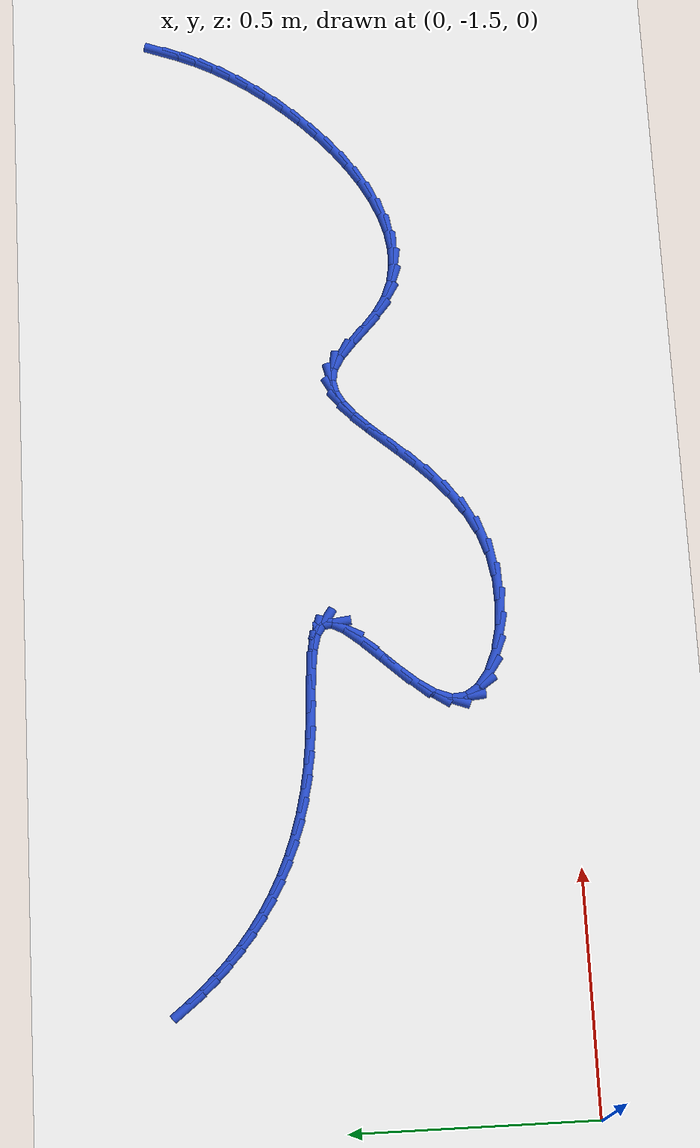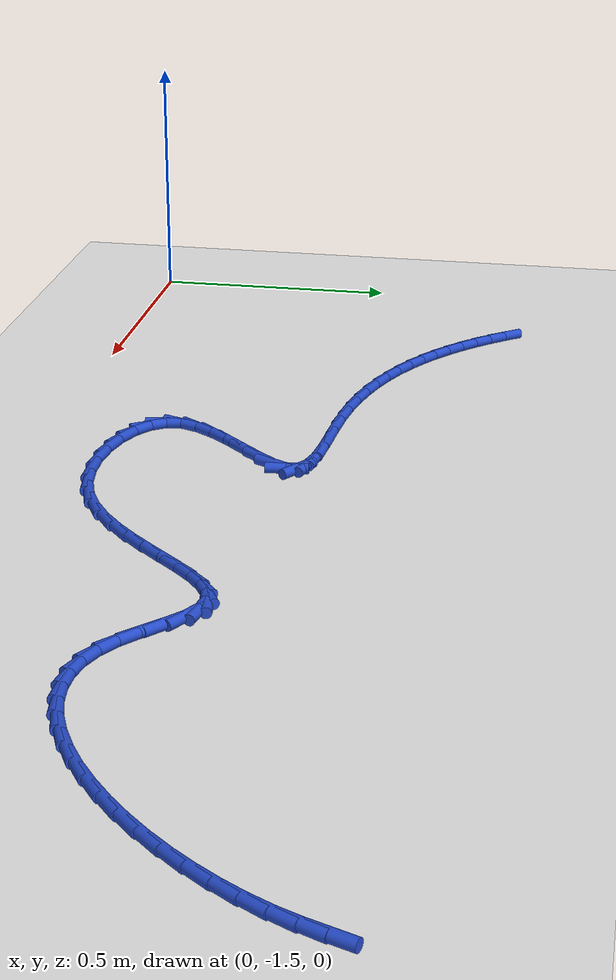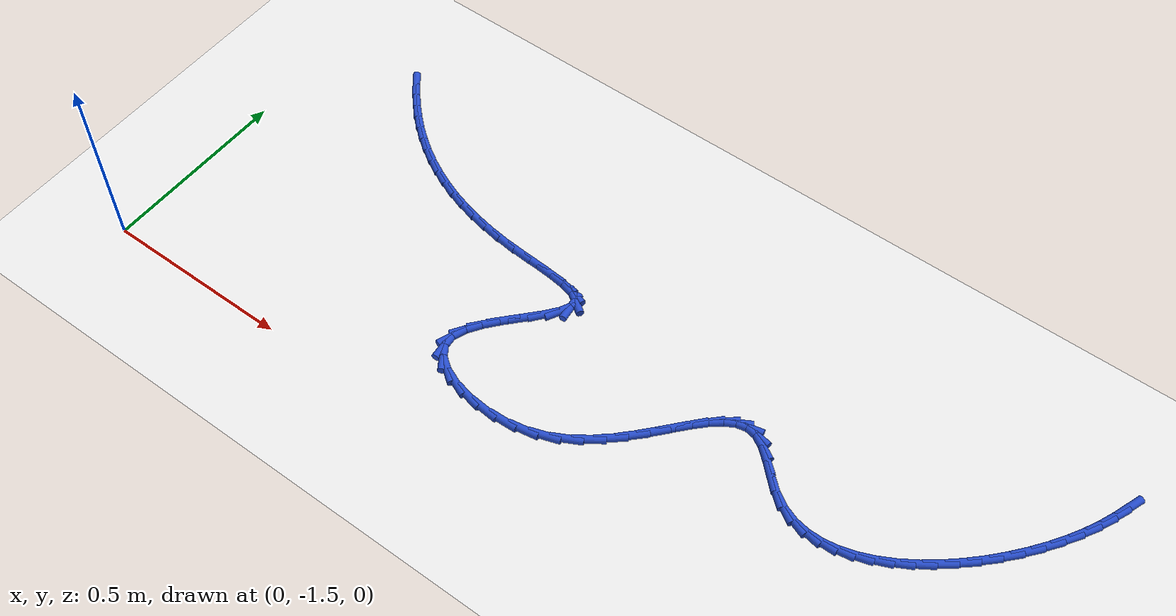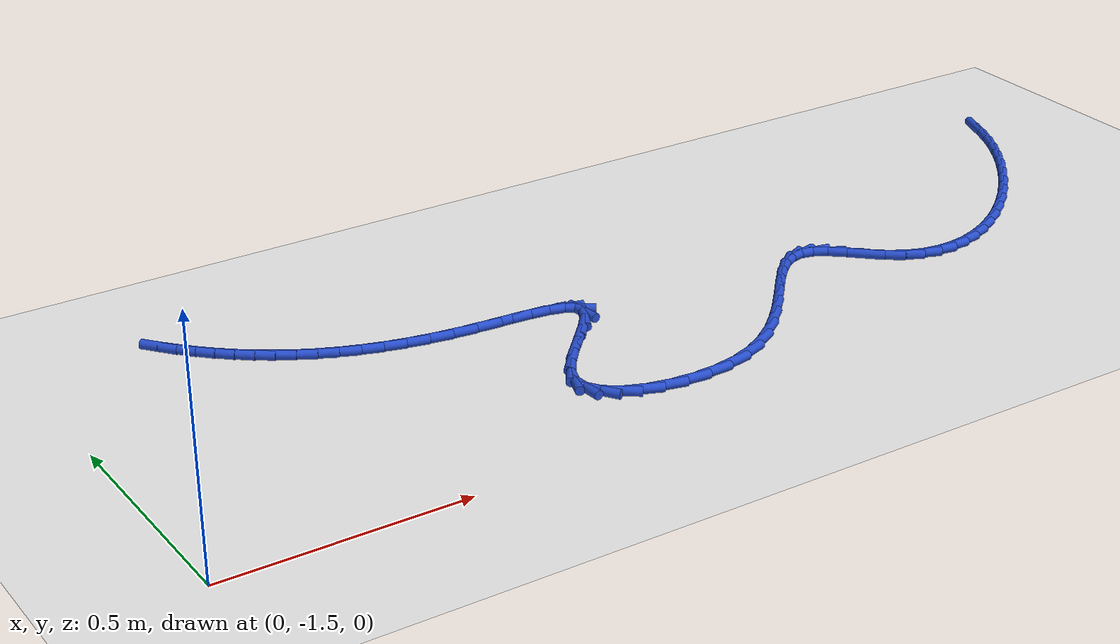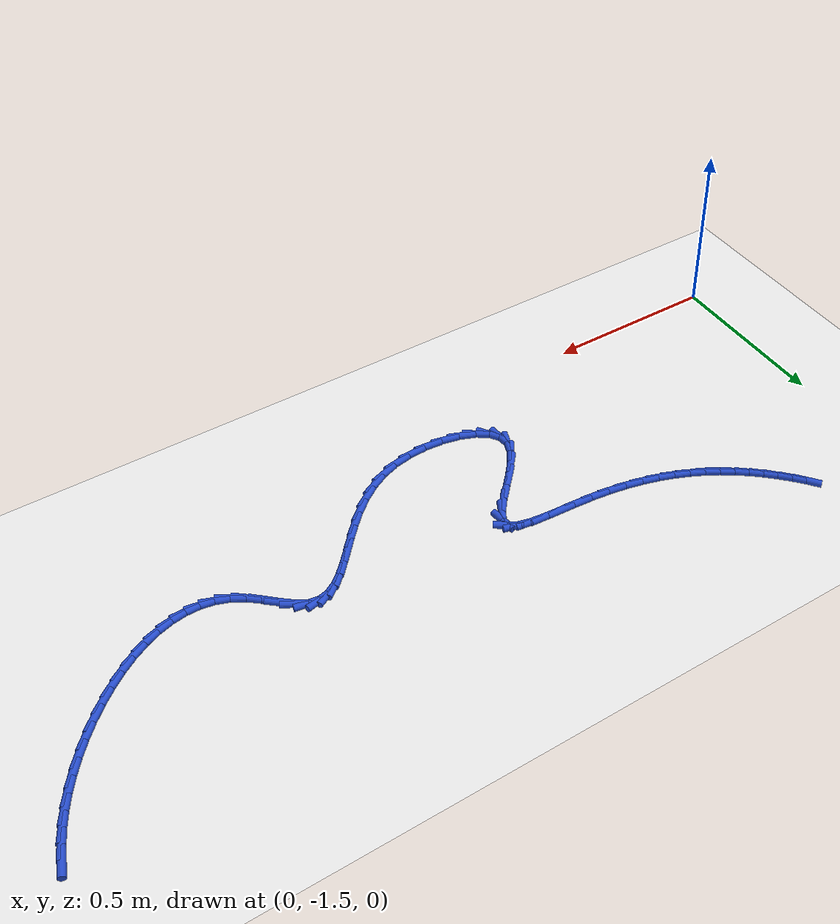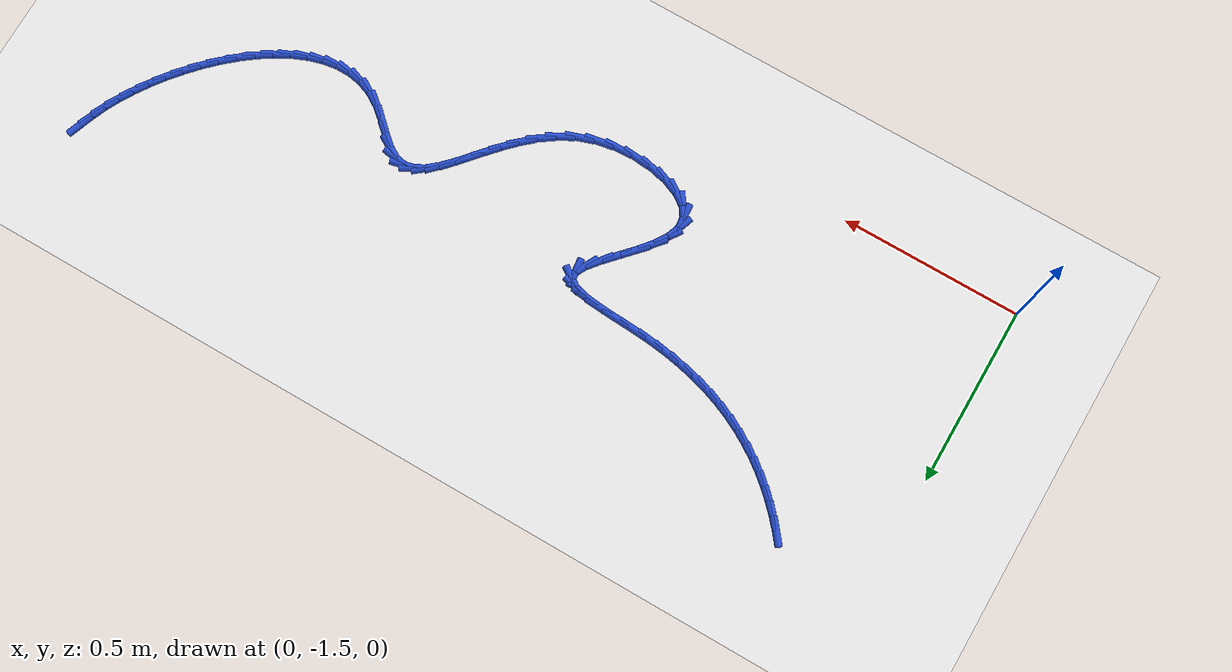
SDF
<sdf version="1.6">
 <world name="default">
  <model name="ground_plane">
   <static>1</static>
   <link name="link">
    <collision name="collision">
     <geometry><plane><normal>0 0 1</normal><size>100 100</size></plane></geometry>
     <surface><friction><ode><mu>100</mu><mu2>50</mu2></ode></friction></surface>
    </collision>
    <visual name="visual">
     <cast_shadows>0</cast_shadows>
     <geometry><plane><normal>0 0 1</normal><size>100 100</size></plane></geometry>
     <material>
      <script><uri>file://media/materials/scripts/gazebo.material</uri><name>Gazebo/WhiteGlow</name></script>
     </material>
    </visual>
   </link>
  </model>
  <model name="line">
   <link name="link_128">
    <pose>2.3588797464618136 -0.7130831240338528 0.01 0 1.57 1.2246334717804939</pose>
    <collision name="collision">
     <geometry><cylinder><radius>0.01</radius><length>0.08</length></cylinder></geometry>
    </collision>
    <visual name="visual">
     <material>
      <script><name>Gazebo/Blue</name><uri>file://media/materials/scripts/gazebo.material</uri></script>
     </material>
     <geometry><cylinder><radius>0.01</radius><length>0.08</length></cylinder></geometry>
    </visual>
   </link>
   <link name="link_129">
    <pose>2.345464387027587 -0.7502771229693032 0.01 0 1.57 1.1703237414654428</pose>
    <collision name="collision">
     <geometry><cylinder><radius>0.01</radius><length>0.08</length></cylinder></geometry>
    </collision>
    <visual name="visual">
     <material>
      <script><name>Gazebo/Blue</name><uri>file://media/materials/scripts/gazebo.material</uri></script>
     </material>
     <geometry><cylinder><radius>0.01</radius><length>0.08</length></cylinder></geometry>
    </visual>
   </link>
   <link name="link_130">
    <pose>2.3296010954592896 -0.7877479553292828 0.01 0 1.57 1.1039477855992201</pose>
    <collision name="collision">
     <geometry><cylinder><radius>0.01</radius><length>0.08</length></cylinder></geometry>
    </collision>
    <visual name="visual">
     <material>
      <script><name>Gazebo/Blue</name><uri>file://media/materials/scripts/gazebo.material</uri></script>
     </material>
     <geometry><cylinder><radius>0.01</radius><length>0.08</length></cylinder></geometry>
    </visual>
   </link>
   <link name="link_131">
    <pose>2.3102534347724304 -0.8261355926537783 0.01 0 1.57 1.0422277539545297</pose>
    <collision name="collision">
     <geometry><cylinder><radius>0.01</radius><length>0.08</length></cylinder></geometry>
    </collision>
    <visual name="visual">
     <material>
      <script><name>Gazebo/Blue</name><uri>file://media/materials/scripts/gazebo.material</uri></script>
     </material>
     <geometry><cylinder><radius>0.01</radius><length>0.08</length></cylinder></geometry>
    </visual>
   </link>
   <link name="link_132">
    <pose>2.2874665083433743 -0.8651545836900321 0.01 0 1.57 0.985975855565394</pose>
    <collision name="collision">
     <geometry><cylinder><radius>0.01</radius><length>0.08</length></cylinder></geometry>
    </collision>
    <visual name="visual">
     <material>
      <script><name>Gazebo/Blue</name><uri>file://media/materials/scripts/gazebo.material</uri></script>
     </material>
     <geometry><cylinder><radius>0.01</radius><length>0.08</length></cylinder></geometry>
    </visual>
   </link>
   <link name="link_133">
    <pose>2.2615585088469774 -0.9042858076243321 0.01 0 1.57 0.9328110256673688</pose>
    <collision name="collision">
     <geometry><cylinder><radius>0.01</radius><length>0.08</length></cylinder></geometry>
    </collision>
    <visual name="visual">
     <material>
      <script><name>Gazebo/Blue</name><uri>file://media/materials/scripts/gazebo.material</uri></script>
     </material>
     <geometry><cylinder><radius>0.01</radius><length>0.08</length></cylinder></geometry>
    </visual>
   </link>
   <link name="link_134">
    <pose>2.2328476289679675 -0.9430101436345186 0.01 0 1.57 0.8808082338046381</pose>
    <collision name="collision">
     <geometry><cylinder><radius>0.01</radius><length>0.08</length></cylinder></geometry>
    </collision>
    <visual name="visual">
     <material>
      <script><name>Gazebo/Blue</name><uri>file://media/materials/scripts/gazebo.material</uri></script>
     </material>
     <geometry><cylinder><radius>0.01</radius><length>0.08</length></cylinder></geometry>
    </visual>
   </link>
   <link name="link_135">
    <pose>2.2016520613910693 -0.980808470898434 0.01 0 1.57 0.8282768920435906</pose>
    <collision name="collision">
     <geometry><cylinder><radius>0.01</radius><length>0.08</length></cylinder></geometry>
    </collision>
    <visual name="visual">
     <material>
      <script><name>Gazebo/Blue</name><uri>file://media/materials/scripts/gazebo.material</uri></script>
     </material>
     <geometry><cylinder><radius>0.01</radius><length>0.08</length></cylinder></geometry>
    </visual>
   </link>
   <link name="link_136">
    <pose>2.168289998801013 -1.0171616685939173 0.01 0 1.57 0.7735966174872563</pose>
    <collision name="collision">
     <geometry><cylinder><radius>0.01</radius><length>0.08</length></cylinder></geometry>
    </collision>
    <visual name="visual">
     <material>
      <script><name>Gazebo/Blue</name><uri>file://media/materials/scripts/gazebo.material</uri></script>
     </material>
     <geometry><cylinder><radius>0.01</radius><length>0.08</length></cylinder></geometry>
    </visual>
   </link>
   <link name="link_137">
    <pose>2.1330796338825246 -1.0515506158988102 0.01 0 1.57 0.715081993751262</pose>
    <collision name="collision">
     <geometry><cylinder><radius>0.01</radius><length>0.08</length></cylinder></geometry>
    </collision>
    <visual name="visual">
     <material>
      <script><name>Gazebo/Blue</name><uri>file://media/materials/scripts/gazebo.material</uri></script>
     </material>
     <geometry><cylinder><radius>0.01</radius><length>0.08</length></cylinder></geometry>
    </visual>
   </link>
   <link name="link_138">
    <pose>2.0963391593203307 -1.0834561919909536 0.01 0 1.57 0.650859563775182</pose>
    <collision name="collision">
     <geometry><cylinder><radius>0.01</radius><length>0.08</length></cylinder></geometry>
    </collision>
    <visual name="visual">
     <material>
      <script><name>Gazebo/Blue</name><uri>file://media/materials/scripts/gazebo.material</uri></script>
     </material>
     <geometry><cylinder><radius>0.01</radius><length>0.08</length></cylinder></geometry>
    </visual>
   </link>
   <link name="link_139">
    <pose>2.0583867677991567 -1.112359276048189 0.01 0 1.57 0.5787511875334159</pose>
    <collision name="collision">
     <geometry><cylinder><radius>0.01</radius><length>0.08</length></cylinder></geometry>
    </collision>
    <visual name="visual">
     <material>
      <script><name>Gazebo/Blue</name><uri>file://media/materials/scripts/gazebo.material</uri></script>
     </material>
     <geometry><cylinder><radius>0.01</radius><length>0.08</length></cylinder></geometry>
    </visual>
   </link>
   <link name="link_140">
    <pose>2.0195406520037325 -1.137740747248356 0.01 0 1.57 0.49617452839347953</pose>
    <collision name="collision">
     <geometry><cylinder><radius>0.01</radius><length>0.08</length></cylinder></geometry>
    </collision>
    <visual name="visual">
     <material>
      <script><name>Gazebo/Blue</name><uri>file://media/materials/scripts/gazebo.material</uri></script>
     </material>
     <geometry><cylinder><radius>0.01</radius><length>0.08</length></cylinder></geometry>
    </visual>
   </link>
   <link name="link_141">
    <pose>1.9801190046187847 -1.1590814847692967 0.01 0 1.57 0.40010426107601527</pose>
    <collision name="collision">
     <geometry><cylinder><radius>0.01</radius><length>0.08</length></cylinder></geometry>
    </collision>
    <visual name="visual">
     <material>
      <script><name>Gazebo/Blue</name><uri>file://media/materials/scripts/gazebo.material</uri></script>
     </material>
     <geometry><cylinder><radius>0.01</radius><length>0.08</length></cylinder></geometry>
    </visual>
   </link>
   <link name="link_142">
    <pose>1.940440018329039 -1.1758623677888513 0.01 0 1.57 0.2872013699324939</pose>
    <collision name="collision">
     <geometry><cylinder><radius>0.01</radius><length>0.08</length></cylinder></geometry>
    </collision>
    <visual name="visual">
     <material>
      <script><name>Gazebo/Blue</name><uri>file://media/materials/scripts/gazebo.material</uri></script>
     </material>
     <geometry><cylinder><radius>0.01</radius><length>0.08</length></cylinder></geometry>
    </visual>
   </link>
   <link name="link_143">
    <pose>1.900821885819222 -1.1875642754848612 0.01 0 1.57 0.15431762438119342</pose>
    <collision name="collision">
     <geometry><cylinder><radius>0.01</radius><length>0.08</length></cylinder></geometry>
    </collision>
    <visual name="visual">
     <material>
      <script><name>Gazebo/Blue</name><uri>file://media/materials/scripts/gazebo.material</uri></script>
     </material>
     <geometry><cylinder><radius>0.01</radius><length>0.08</length></cylinder></geometry>
    </visual>
   </link>
   <link name="link_144">
    <pose>1.861582799774063 -1.1936680870351668 0.01 0 1.57 -0.0003478145988384887</pose>
    <collision name="collision">
     <geometry><cylinder><radius>0.01</radius><length>0.08</length></cylinder></geometry>
    </collision>
    <visual name="visual">
     <material>
      <script><name>Gazebo/Blue</name><uri>file://media/materials/scripts/gazebo.material</uri></script>
     </material>
     <geometry><cylinder><radius>0.01</radius><length>0.08</length></cylinder></geometry>
    </visual>
   </link>
   <link name="link_145">
    <pose>1.823040952878288 -1.1936546816176097 0.01 0 1.57 -0.1753811068681421</pose>
    <collision name="collision">
     <geometry><cylinder><radius>0.01</radius><length>0.08</length></cylinder></geometry>
    </collision>
    <visual name="visual">
     <material>
      <script><name>Gazebo/Blue</name><uri>file://media/materials/scripts/gazebo.material</uri></script>
     </material>
     <geometry><cylinder><radius>0.01</radius><length>0.08</length></cylinder></geometry>
    </visual>
   </link>
   <link name="link_146">
    <pose>1.7855145378166237 -1.1870049384100303 0.01 0 1.57 -0.36440045906522167</pose>
    <collision name="collision">
     <geometry><cylinder><radius>0.01</radius><length>0.08</length></cylinder></geometry>
    </collision>
    <visual name="visual">
     <material>
      <script><name>Gazebo/Blue</name><uri>file://media/materials/scripts/gazebo.material</uri></script>
     </material>
     <geometry><cylinder><radius>0.01</radius><length>0.08</length></cylinder></geometry>
    </visual>
   </link>
   <link name="link_147">
    <pose>1.7493217472737974 -1.1731997365902698 0.01 0 1.57 -0.5559503273216813</pose>
    <collision name="collision">
     <geometry><cylinder><radius>0.01</radius><length>0.08</length></cylinder></geometry>
    </collision>
    <visual name="visual">
     <material>
      <script><name>Gazebo/Blue</name><uri>file://media/materials/scripts/gazebo.material</uri></script>
     </material>
     <geometry><cylinder><radius>0.01</radius><length>0.08</length></cylinder></geometry>
    </visual>
   </link>
   <link name="link_148">
    <pose>1.7147792643131456 -1.1517377205502486 0.01 0 1.57 -0.7034126687684922</pose>
    <collision name="collision">
     <geometry><cylinder><radius>0.01</radius><length>0.08</length></cylinder></geometry>
    </collision>
    <visual name="visual">
     <material>
      <script><name>Gazebo/Blue</name><uri>file://media/materials/scripts/gazebo.material</uri></script>
     </material>
     <geometry><cylinder><radius>0.01</radius><length>0.08</length></cylinder></geometry>
    </visual>
   </link>
   <link name="link_149">
    <pose>1.6820459074342151 -1.123975283778317 0.01 0 1.57 -0.7553291124921685</pose>
    <collision name="collision">
     <geometry><cylinder><radius>0.01</radius><length>0.08</length></cylinder></geometry>
    </collision>
    <visual name="visual">
     <material>
      <script><name>Gazebo/Blue</name><uri>file://media/materials/scripts/gazebo.material</uri></script>
     </material>
     <geometry><cylinder><radius>0.01</radius><length>0.08</length></cylinder></geometry>
    </visual>
   </link>
   <link name="link_150">
    <pose>1.6509864068957525 -1.0947296481494109 0.01 0 1.57 -0.7125654013345857</pose>
    <collision name="collision">
     <geometry><cylinder><radius>0.01</radius><length>0.08</length></cylinder></geometry>
    </collision>
    <visual name="visual">
     <material>
      <script><name>Gazebo/Blue</name><uri>file://media/materials/scripts/gazebo.material</uri></script>
     </material>
     <geometry><cylinder><radius>0.01</radius><length>0.08</length></cylinder></geometry>
    </visual>
   </link>
   <link name="link_151">
    <pose>1.6214333867127713 -1.0691958615929618 0.01 0 1.57 -0.5330678329767308</pose>
    <collision name="collision">
     <geometry><cylinder><radius>0.01</radius><length>0.08</length></cylinder></geometry>
    </collision>
    <visual name="visual">
     <material>
      <script><name>Gazebo/Blue</name><uri>file://media/materials/scripts/gazebo.material</uri></script>
     </material>
     <geometry><cylinder><radius>0.01</radius><length>0.08</length></cylinder></geometry>
    </visual>
   </link>
   <link name="link_152">
    <pose>1.5932185668764371 -1.052547835170168 0.01 0 1.57 -0.17514201919134656</pose>
    <collision name="collision">
     <geometry><cylinder><radius>0.01</radius><length>0.08</length></cylinder></geometry>
    </collision>
    <visual name="visual">
     <material>
      <script><name>Gazebo/Blue</name><uri>file://media/materials/scripts/gazebo.material</uri></script>
     </material>
     <geometry><cylinder><radius>0.01</radius><length>0.08</length></cylinder></geometry>
    </visual>
   </link>
   <link name="link_153">
    <pose>1.566078968845737 -1.0477453454375834 0.01 0 1.57 0.2181743971999</pose>
    <collision name="collision">
     <geometry><cylinder><radius>0.01</radius><length>0.08</length></cylinder></geometry>
    </collision>
    <visual name="visual">
     <material>
      <script><name>Gazebo/Blue</name><uri>file://media/materials/scripts/gazebo.material</uri></script>
     </material>
     <geometry><cylinder><radius>0.01</radius><length>0.08</length></cylinder></geometry>
    </visual>
   </link>
   <link name="link_154">
    <pose>1.5395751095520622 -1.0536213387277658 0.01 0 1.57 0.5160674583494556</pose>
    <collision name="collision">
     <geometry><cylinder><radius>0.01</radius><length>0.08</length></cylinder></geometry>
    </collision>
    <visual name="visual">
     <material>
      <script><name>Gazebo/Blue</name><uri>file://media/materials/scripts/gazebo.material</uri></script>
     </material>
     <geometry><cylinder><radius>0.01</radius><length>0.08</length></cylinder></geometry>
    </visual>
   </link>
   <link name="link_155">
    <pose>1.5132482244824337 -1.0685579443405182 0.01 0 1.57 0.6992777851298871</pose>
    <collision name="collision">
     <geometry><cylinder><radius>0.01</radius><length>0.08</length></cylinder></geometry>
    </collision>
    <visual name="visual">
     <material>
      <script><name>Gazebo/Blue</name><uri>file://media/materials/scripts/gazebo.material</uri></script>
     </material>
     <geometry><cylinder><radius>0.01</radius><length>0.08</length></cylinder></geometry>
    </visual>
   </link>
   <link name="link_156">
    <pose>1.486639549123871 -1.0909372915756432 0.01 0 1.57 0.8007873161354959</pose>
    <collision name="collision">
     <geometry><cylinder><radius>0.01</radius><length>0.08</length></cylinder></geometry>
    </collision>
    <visual name="visual">
     <material>
      <script><name>Gazebo/Blue</name><uri>file://media/materials/scripts/gazebo.material</uri></script>
     </material>
     <geometry><cylinder><radius>0.01</radius><length>0.08</length></cylinder></geometry>
    </visual>
   </link>
   <link name="link_157">
    <pose>1.4592903189633952 -1.119141509732941 0.01 0 1.57 0.8486777965991722</pose>
    <collision name="collision">
     <geometry><cylinder><radius>0.01</radius><length>0.08</length></cylinder></geometry>
    </collision>
    <visual name="visual">
     <material>
      <script><name>Gazebo/Blue</name><uri>file://media/materials/scripts/gazebo.material</uri></script>
     </material>
     <geometry><cylinder><radius>0.01</radius><length>0.08</length></cylinder></geometry>
    </visual>
   </link>
   <link name="link_158">
    <pose>1.4307417694880264 -1.1515527281122147 0.01 0 1.57 0.8587815115589778</pose>
    <collision name="collision">
     <geometry><cylinder><radius>0.01</radius><length>0.08</length></cylinder></geometry>
    </collision>
    <visual name="visual">
     <material>
      <script><name>Gazebo/Blue</name><uri>file://media/materials/scripts/gazebo.material</uri></script>
     </material>
     <geometry><cylinder><radius>0.01</radius><length>0.08</length></cylinder></geometry>
    </visual>
   </link>
   <link name="link_159">
    <pose>1.4005351361847844 -1.1865530760132657 0.01 0 1.57 0.8387645365579747</pose>
    <collision name="collision">
     <geometry><cylinder><radius>0.01</radius><length>0.08</length></cylinder></geometry>
    </collision>
    <visual name="visual">
     <material>
      <script><name>Gazebo/Blue</name><uri>file://media/materials/scripts/gazebo.material</uri></script>
     </material>
     <geometry><cylinder><radius>0.01</radius><length>0.08</length></cylinder></geometry>
    </visual>
   </link>
   <link name="link_160">
    <pose>1.3682116545406882 -1.2225246827358967 0.01 0 1.57 0.7914629643548887</pose>
    <collision name="collision">
     <geometry><cylinder><radius>0.01</radius><length>0.08</length></cylinder></geometry>
    </collision>
    <visual name="visual">
     <material>
      <script><name>Gazebo/Blue</name><uri>file://media/materials/scripts/gazebo.material</uri></script>
     </material>
     <geometry><cylinder><radius>0.01</radius><length>0.08</length></cylinder></geometry>
    </visual>
   </link>
   <link name="link_161">
    <pose>1.3333125600427609 -1.2578496775799084 0.01 0 1.57 0.7168666035768462</pose>
    <collision name="collision">
     <geometry><cylinder><radius>0.01</radius><length>0.08</length></cylinder></geometry>
    </collision>
    <visual name="visual">
     <material>
      <script><name>Gazebo/Blue</name><uri>file://media/materials/scripts/gazebo.material</uri></script>
     </material>
     <geometry><cylinder><radius>0.01</radius><length>0.08</length></cylinder></geometry>
    </visual>
   </link>
   <link name="link_162">
    <pose>1.2953790881780207 -1.2909101898451039 0.01 0 1.57 0.6136285515322822</pose>
    <collision name="collision">
     <geometry><cylinder><radius>0.01</radius><length>0.08</length></cylinder></geometry>
    </collision>
    <visual name="visual">
     <material>
      <script><name>Gazebo/Blue</name><uri>file://media/materials/scripts/gazebo.material</uri></script>
     </material>
     <geometry><cylinder><radius>0.01</radius><length>0.08</length></cylinder></geometry>
    </visual>
   </link>
   <link name="link_163">
    <pose>1.2539524744334885 -1.320088348831284 0.01 0 1.57 0.48092513375282897</pose>
    <collision name="collision">
     <geometry><cylinder><radius>0.01</radius><length>0.08</length></cylinder></geometry>
    </collision>
    <visual name="visual">
     <material>
      <script><name>Gazebo/Blue</name><uri>file://media/materials/scripts/gazebo.material</uri></script>
     </material>
     <geometry><cylinder><radius>0.01</radius><length>0.08</length></cylinder></geometry>
    </visual>
   </link>
   <link name="link_164">
    <pose>1.2085739542961844 -1.3437662838382511 0.01 0 1.57 0.3225526291342073</pose>
    <collision name="collision">
     <geometry><cylinder><radius>0.01</radius><length>0.08</length></cylinder></geometry>
    </collision>
    <visual name="visual">
     <material>
      <script><name>Gazebo/Blue</name><uri>file://media/materials/scripts/gazebo.material</uri></script>
     </material>
     <geometry><cylinder><radius>0.01</radius><length>0.08</length></cylinder></geometry>
    </visual>
   </link>
   <link name="link_165">
    <pose>1.1588640491202598 -1.360380565264015 0.01 0 1.57 0.16927857842505267</pose>
    <collision name="collision">
     <geometry><cylinder><radius>0.01</radius><length>0.08</length></cylinder></geometry>
    </collision>
    <visual name="visual">
     <material>
      <script><name>Gazebo/Blue</name><uri>file://media/materials/scripts/gazebo.material</uri></script>
     </material>
     <geometry><cylinder><radius>0.01</radius><length>0.08</length></cylinder></geometry>
    </visual>
   </link>
   <link name="link_166">
    <pose>1.1059756393115865 -1.3694199473653164 0.01 0 1.57 0.035574539402613556</pose>
    <collision name="collision">
     <geometry><cylinder><radius>0.01</radius><length>0.08</length></cylinder></geometry>
    </collision>
    <visual name="visual">
     <material>
      <script><name>Gazebo/Blue</name><uri>file://media/materials/scripts/gazebo.material</uri></script>
     </material>
     <geometry><cylinder><radius>0.01</radius><length>0.08</length></cylinder></geometry>
    </visual>
   </link>
   <link name="link_167">
    <pose>1.052447763690652 -1.3713249805904455 0.01 0 1.57 -0.09191970955098985</pose>
    <collision name="collision">
     <geometry><cylinder><radius>0.01</radius><length>0.08</length></cylinder></geometry>
    </collision>
    <visual name="visual">
     <material>
      <script><name>Gazebo/Blue</name><uri>file://media/materials/scripts/gazebo.material</uri></script>
     </material>
     <geometry><cylinder><radius>0.01</radius><length>0.08</length></cylinder></geometry>
    </visual>
   </link>
   <link name="link_168">
    <pose>1.0008694146251977 -1.366570515649143 0.01 0 1.57 -0.22848891532067</pose>
    <collision name="collision">
     <geometry><cylinder><radius>0.01</radius><length>0.08</length></cylinder></geometry>
    </collision>
    <visual name="visual">
     <material>
      <script><name>Gazebo/Blue</name><uri>file://media/materials/scripts/gazebo.material</uri></script>
     </material>
     <geometry><cylinder><radius>0.01</radius><length>0.08</length></cylinder></geometry>
    </visual>
   </link>
   <link name="link_169">
    <pose>0.9538295844829652 -1.3556314032511467 0.01 0 1.57 -0.3951918997214227</pose>
    <collision name="collision">
     <geometry><cylinder><radius>0.01</radius><length>0.08</length></cylinder></geometry>
    </collision>
    <visual name="visual">
     <material>
      <script><name>Gazebo/Blue</name><uri>file://media/materials/scripts/gazebo.material</uri></script>
     </material>
     <geometry><cylinder><radius>0.01</radius><length>0.08</length></cylinder></geometry>
    </visual>
   </link>
   <link name="link_170">
    <pose>0.9139172656316987 -1.3389824941061967 0.01 0 1.57 -0.6271321056751705</pose>
    <collision name="collision">
     <geometry><cylinder><radius>0.01</radius><length>0.08</length></cylinder></geometry>
    </collision>
    <visual name="visual">
     <material>
      <script><name>Gazebo/Blue</name><uri>file://media/materials/scripts/gazebo.material</uri></script>
     </material>
     <geometry><cylinder><radius>0.01</radius><length>0.08</length></cylinder></geometry>
    </visual>
   </link>
   <link name="link_171">
    <pose>0.8837214504391391 -1.3170986389240327 0.01 0 1.57 -0.9794833193295259</pose>
    <collision name="collision">
     <geometry><cylinder><radius>0.01</radius><length>0.08</length></cylinder></geometry>
    </collision>
    <visual name="visual">
     <material>
      <script><name>Gazebo/Blue</name><uri>file://media/materials/scripts/gazebo.material</uri></script>
     </material>
     <geometry><cylinder><radius>0.01</radius><length>0.08</length></cylinder></geometry>
    </visual>
   </link>
   <link name="link_172">
    <pose>0.8658311312730285 -1.290454688414393 0.01 0 1.57 -1.4740869642059813</pose>
    <collision name="collision">
     <geometry><cylinder><radius>0.01</radius><length>0.08</length></cylinder></geometry>
    </collision>
    <visual name="visual">
     <material>
      <script><name>Gazebo/Blue</name><uri>file://media/materials/scripts/gazebo.material</uri></script>
     </material>
     <geometry><cylinder><radius>0.01</radius><length>0.08</length></cylinder></geometry>
    </visual>
   </link>
   <link name="link_173">
    <pose>0.8628306876849228 -1.2595261041831476 0.01 0 1.57 1.2197897763804975</pose>
    <collision name="collision">
     <geometry><cylinder><radius>0.01</radius><length>0.08</length></cylinder></geometry>
    </collision>
    <visual name="visual">
     <material>
      <script><name>Gazebo/Blue</name><uri>file://media/materials/scripts/gazebo.material</uri></script>
     </material>
     <geometry><cylinder><radius>0.01</radius><length>0.08</length></cylinder></geometry>
    </visual>
   </link>
   <link name="link_174">
    <pose>0.87546120991624 -1.22503246298447 0.01 0 1.57 0.9852669375909492</pose>
    <collision name="collision">
     <geometry><cylinder><radius>0.01</radius><length>0.08</length></cylinder></geometry>
    </collision>
    <visual name="visual">
     <material>
      <script><name>Gazebo/Blue</name><uri>file://media/materials/scripts/gazebo.material</uri></script>
     </material>
     <geometry><cylinder><radius>0.01</radius><length>0.08</length></cylinder></geometry>
    </visual>
   </link>
   <link name="link_175">
    <pose>0.899812304828975 -1.1883093585747213 0.01 0 1.57 0.8733721214522626</pose>
    <collision name="collision">
     <geometry><cylinder><radius>0.01</radius><length>0.08</length></cylinder></geometry>
    </collision>
    <visual name="visual">
     <material>
      <script><name>Gazebo/Blue</name><uri>file://media/materials/scripts/gazebo.material</uri></script>
     </material>
     <geometry><cylinder><radius>0.01</radius><length>0.08</length></cylinder></geometry>
    </visual>
   </link>
   <link name="link_176">
    <pose>0.9312512096968366 -1.150788051385159 0.01 0 1.57 0.8276759274109577</pose>
    <collision name="collision">
     <geometry><cylinder><radius>0.01</radius><length>0.08</length></cylinder></geometry>
    </collision>
    <visual name="visual">
     <material>
      <script><name>Gazebo/Blue</name><uri>file://media/materials/scripts/gazebo.material</uri></script>
     </material>
     <geometry><cylinder><radius>0.01</radius><length>0.08</length></cylinder></geometry>
    </visual>
   </link>
   <link name="link_177">
    <pose>0.9651451617935333 -1.113899801847041 0.01 0 1.57 0.8320682925573629</pose>
    <collision name="collision">
     <geometry><cylinder><radius>0.01</radius><length>0.08</length></cylinder></geometry>
    </collision>
    <visual name="visual">
     <material>
      <script><name>Gazebo/Blue</name><uri>file://media/materials/scripts/gazebo.material</uri></script>
     </material>
     <geometry><cylinder><radius>0.01</radius><length>0.08</length></cylinder></geometry>
    </visual>
   </link>
   <link name="link_178">
    <pose>0.9968613983927744 -1.0790758703916243 0.01 0 1.57 0.8991171294621286</pose>
    <collision name="collision">
     <geometry><cylinder><radius>0.01</radius><length>0.08</length></cylinder></geometry>
    </collision>
    <visual name="visual">
     <material>
      <script><name>Gazebo/Blue</name><uri>file://media/materials/scripts/gazebo.material</uri></script>
     </material>
     <geometry><cylinder><radius>0.01</radius><length>0.08</length></cylinder></geometry>
    </visual>
   </link>
   <link name="link_179">
    <pose>1.0217671567682676 -1.047747517450169 0.01 0 1.57 1.099248534375405</pose>
    <collision name="collision">
     <geometry><cylinder><radius>0.01</radius><length>0.08</length></cylinder></geometry>
    </collision>
    <visual name="visual">
     <material>
      <script><name>Gazebo/Blue</name><uri>file://media/materials/scripts/gazebo.material</uri></script>
     </material>
     <geometry><cylinder><radius>0.01</radius><length>0.08</length></cylinder></geometry>
    </visual>
   </link>
   <link name="link_180">
    <pose>1.035229674193722 -1.021346003453931 0.01 0 1.57 -1.4471098315727495</pose>
    <collision name="collision">
     <geometry><cylinder><radius>0.01</radius><length>0.08</length></cylinder></geometry>
    </collision>
    <visual name="visual">
     <material>
      <script><name>Gazebo/Blue</name><uri>file://media/materials/scripts/gazebo.material</uri></script>
     </material>
     <geometry><cylinder><radius>0.01</radius><length>0.08</length></cylinder></geometry>
    </visual>
   </link>
   <link name="link_181">
    <pose>1.0327325470148663 -1.0012598962863979 0.01 0 1.57 -0.6145539847894504</pose>
    <collision name="collision">
     <geometry><cylinder><radius>0.01</radius><length>0.08</length></cylinder></geometry>
    </collision>
    <visual name="visual">
     <material>
      <script><name>Gazebo/Blue</name><uri>file://media/materials/scripts/gazebo.material</uri></script>
     </material>
     <geometry><cylinder><radius>0.01</radius><length>0.08</length></cylinder></geometry>
    </visual>
   </link>
   <link name="link_182">
    <pose>1.0133305031155309 -0.9875675032631305 0.01 0 1.57 -0.2582761382098865</pose>
    <collision name="collision">
     <geometry><cylinder><radius>0.01</radius><length>0.08</length></cylinder></geometry>
    </collision>
    <visual name="visual">
     <material>
      <script><name>Gazebo/Blue</name><uri>file://media/materials/scripts/gazebo.material</uri></script>
     </material>
     <geometry><cylinder><radius>0.01</radius><length>0.08</length></cylinder></geometry>
    </visual>
   </link>
   <link name="link_183">
    <pose>0.9802311416913744 -0.9788234287877448 0.01 0 1.57 -0.12225135888710431</pose>
    <collision name="collision">
     <geometry><cylinder><radius>0.01</radius><length>0.08</length></cylinder></geometry>
    </collision>
    <visual name="visual">
     <material>
      <script><name>Gazebo/Blue</name><uri>file://media/materials/scripts/gazebo.material</uri></script>
     </material>
     <geometry><cylinder><radius>0.01</radius><length>0.08</length></cylinder></geometry>
    </visual>
   </link>
   <link name="link_184">
    <pose>0.936875600296923 -0.9734965912286411 0.01 0 1.57 -0.06847246223263063</pose>
    <collision name="collision">
     <geometry><cylinder><radius>0.01</radius><length>0.08</length></cylinder></geometry>
    </collision>
    <visual name="visual">
     <material>
      <script><name>Gazebo/Blue</name><uri>file://media/materials/scripts/gazebo.material</uri></script>
     </material>
     <geometry><cylinder><radius>0.01</radius><length>0.08</length></cylinder></geometry>
    </visual>
   </link>
   <link name="link_185">
    <pose>0.8867050164867045 -0.9700559089542214 0.01 0 1.57 -0.057563343126866486</pose>
    <collision name="collision">
     <geometry><cylinder><radius>0.01</radius><length>0.08</length></cylinder></geometry>
    </collision>
    <visual name="visual">
     <material>
      <script><name>Gazebo/Blue</name><uri>file://media/materials/scripts/gazebo.material</uri></script>
     </material>
     <geometry><cylinder><radius>0.01</radius><length>0.08</length></cylinder></geometry>
    </visual>
   </link>
   <link name="link_186">
    <pose>0.8331605278152447 -0.9669703003328871 0.01 0 1.57 -0.07947065342687804</pose>
    <collision name="collision">
     <geometry><cylinder><radius>0.01</radius><length>0.08</length></cylinder></geometry>
    </collision>
    <visual name="visual">
     <material>
      <script><name>Gazebo/Blue</name><uri>file://media/materials/scripts/gazebo.material</uri></script>
     </material>
     <geometry><cylinder><radius>0.01</radius><length>0.08</length></cylinder></geometry>
    </visual>
   </link>
   <link name="link_187">
    <pose>0.7796780838108531 -0.9627110452212287 0.01 0 1.57 -0.12671594121214108</pose>
    <collision name="collision">
     <geometry><cylinder><radius>0.01</radius><length>0.08</length></cylinder></geometry>
    </collision>
    <visual name="visual">
     <material>
      <script><name>Gazebo/Blue</name><uri>file://media/materials/scripts/gazebo.material</uri></script>
     </material>
     <geometry><cylinder><radius>0.01</radius><length>0.08</length></cylinder></geometry>
    </visual>
   </link>
   <link name="link_188">
    <pose>0.728674587032772 -0.9562132737495415 0.01 0 1.57 -0.17973637330831974</pose>
    <collision name="collision">
     <geometry><cylinder><radius>0.01</radius><length>0.08</length></cylinder></geometry>
    </collision>
    <visual name="visual">
     <material>
      <script><name>Gazebo/Blue</name><uri>file://media/materials/scripts/gazebo.material</uri></script>
     </material>
     <geometry><cylinder><radius>0.01</radius><length>0.08</length></cylinder></geometry>
    </visual>
   </link>
   <link name="link_189">
    <pose>0.6803317729112719 -0.9474295204622643 0.01 0 1.57 -0.23535796920785476</pose>
    <collision name="collision">
     <geometry><cylinder><radius>0.01</radius><length>0.08</length></cylinder></geometry>
    </collision>
    <visual name="visual">
     <material>
      <script><name>Gazebo/Blue</name><uri>file://media/materials/scripts/gazebo.material</uri></script>
     </material>
     <geometry><cylinder><radius>0.01</radius><length>0.08</length></cylinder></geometry>
    </visual>
   </link>
   <link name="link_190">
    <pose>0.6345348165004422 -0.9364473083939031 0.01 0 1.57 -0.2932196157124489</pose>
    <collision name="collision">
     <geometry><cylinder><radius>0.01</radius><length>0.08</length></cylinder></geometry>
    </collision>
    <visual name="visual">
     <material>
      <script><name>Gazebo/Blue</name><uri>file://media/materials/scripts/gazebo.material</uri></script>
     </material>
     <geometry><cylinder><radius>0.01</radius><length>0.08</length></cylinder></geometry>
    </visual>
   </link>
   <link name="link_191">
    <pose>0.5911688928543755 -0.9233541605789646 0.01 0 1.57 -0.352839827068526</pose>
    <collision name="collision">
     <geometry><cylinder><radius>0.01</radius><length>0.08</length></cylinder></geometry>
    </collision>
    <visual name="visual">
     <material>
      <script><name>Gazebo/Blue</name><uri>file://media/materials/scripts/gazebo.material</uri></script>
     </material>
     <geometry><cylinder><radius>0.01</radius><length>0.08</length></cylinder></geometry>
    </visual>
   </link>
   <link name="link_192">
    <pose>0.5501191770271608 -0.9082376000519544 0.01 0 1.57 -0.4136262911497943</pose>
    <collision name="collision">
     <geometry><cylinder><radius>0.01</radius><length>0.08</length></cylinder></geometry>
    </collision>
    <visual name="visual">
     <material>
      <script><name>Gazebo/Blue</name><uri>file://media/materials/scripts/gazebo.material</uri></script>
     </material>
     <geometry><cylinder><radius>0.01</radius><length>0.08</length></cylinder></geometry>
    </visual>
   </link>
   <link name="link_193">
    <pose>0.5112708440728886 -0.8911851498473787 0.01 0 1.57 -0.47489804900968413</pose>
    <collision name="collision">
     <geometry><cylinder><radius>0.01</radius><length>0.08</length></cylinder></geometry>
    </collision>
    <visual name="visual">
     <material>
      <script><name>Gazebo/Blue</name><uri>file://media/materials/scripts/gazebo.material</uri></script>
     </material>
     <geometry><cylinder><radius>0.01</radius><length>0.08</length></cylinder></geometry>
    </visual>
   </link>
   <link name="link_194">
    <pose>0.4745090690456492 -0.872284332999744 0.01 0 1.57 -0.5359190411342079</pose>
    <collision name="collision">
     <geometry><cylinder><radius>0.01</radius><length>0.08</length></cylinder></geometry>
    </collision>
    <visual name="visual">
     <material>
      <script><name>Gazebo/Blue</name><uri>file://media/materials/scripts/gazebo.material</uri></script>
     </material>
     <geometry><cylinder><radius>0.01</radius><length>0.08</length></cylinder></geometry>
    </visual>
   </link>
   <link name="link_195">
    <pose>0.43971902699953214 -0.8516226725435554 0.01 0 1.57 -0.5959391492211901</pose>
    <collision name="collision">
     <geometry><cylinder><radius>0.01</radius><length>0.08</length></cylinder></geometry>
    </collision>
    <visual name="visual">
     <material>
      <script><name>Gazebo/Blue</name><uri>file://media/materials/scripts/gazebo.material</uri></script>
     </material>
     <geometry><cylinder><radius>0.01</radius><length>0.08</length></cylinder></geometry>
    </visual>
   </link>
   <link name="link_196">
    <pose>0.40678589298862927 -0.8292876915133199 0.01 0 1.57 -0.6542369638917717</pose>
    <collision name="collision">
     <geometry><cylinder><radius>0.01</radius><length>0.08</length></cylinder></geometry>
    </collision>
    <visual name="visual">
     <material>
      <script><name>Gazebo/Blue</name><uri>file://media/materials/scripts/gazebo.material</uri></script>
     </material>
     <geometry><cylinder><radius>0.01</radius><length>0.08</length></cylinder></geometry>
    </visual>
   </link>
   <link name="link_197">
    <pose>0.37559484206703014 -0.8053669129435435 0.01 0 1.57 -0.710158050613126</pose>
    <collision name="collision">
     <geometry><cylinder><radius>0.01</radius><length>0.08</length></cylinder></geometry>
    </collision>
    <visual name="visual">
     <material>
      <script><name>Gazebo/Blue</name><uri>file://media/materials/scripts/gazebo.material</uri></script>
     </material>
     <geometry><cylinder><radius>0.01</radius><length>0.08</length></cylinder></geometry>
    </visual>
   </link>
   <link name="link_198">
    <pose>0.3460310492888252 -0.7799478598687319 0.01 0 1.57 -0.7631436543244552</pose>
    <collision name="collision">
     <geometry><cylinder><radius>0.01</radius><length>0.08</length></cylinder></geometry>
    </collision>
    <visual name="visual">
     <material>
      <script><name>Gazebo/Blue</name><uri>file://media/materials/scripts/gazebo.material</uri></script>
     </material>
     <geometry><cylinder><radius>0.01</radius><length>0.08</length></cylinder></geometry>
    </visual>
   </link>
   <link name="link_199">
    <pose>0.31797968970810386 -0.7531180553233906 0.01 0 1.57 -0.8127471102310698</pose>
    <collision name="collision">
     <geometry><cylinder><radius>0.01</radius><length>0.08</length></cylinder></geometry>
    </collision>
    <visual name="visual">
     <material>
      <script><name>Gazebo/Blue</name><uri>file://media/materials/scripts/gazebo.material</uri></script>
     </material>
     <geometry><cylinder><radius>0.01</radius><length>0.08</length></cylinder></geometry>
    </visual>
   </link>
   <link name="link_200">
    <pose>0.29132593837895815 -0.7249650223420274 0.01 0 1.57 -0.8586378538364529</pose>
    <collision name="collision">
     <geometry><cylinder><radius>0.01</radius><length>0.08</length></cylinder></geometry>
    </collision>
    <visual name="visual">
     <material>
      <script><name>Gazebo/Blue</name><uri>file://media/materials/scripts/gazebo.material</uri></script>
     </material>
     <geometry><cylinder><radius>0.01</radius><length>0.08</length></cylinder></geometry>
    </visual>
   </link>
   <link name="link_201">
    <pose>0.26595497035547744 -0.6955762839591473 0.01 0 1.57 -0.9005950324375956</pose>
    <collision name="collision">
     <geometry><cylinder><radius>0.01</radius><length>0.08</length></cylinder></geometry>
    </collision>
    <visual name="visual">
     <material>
      <script><name>Gazebo/Blue</name><uri>file://media/materials/scripts/gazebo.material</uri></script>
     </material>
     <geometry><cylinder><radius>0.01</radius><length>0.08</length></cylinder></geometry>
    </visual>
   </link>
  </model>
 </world>
</sdf>
